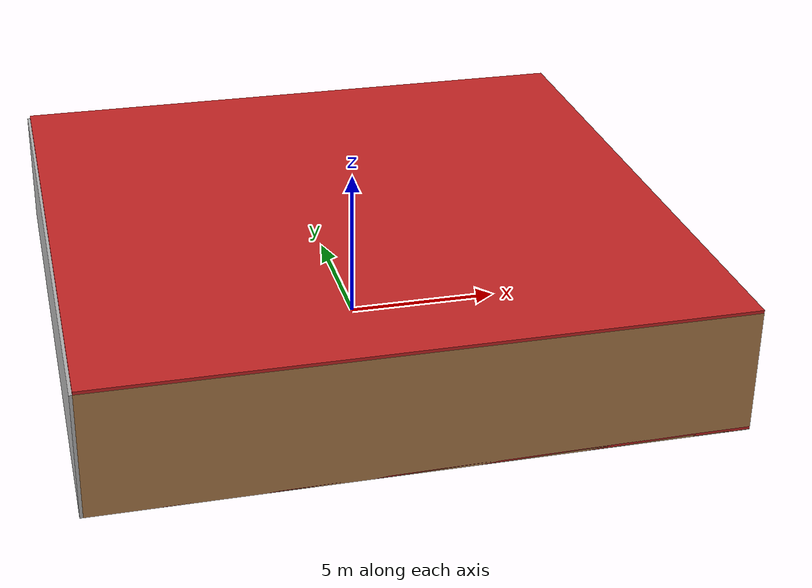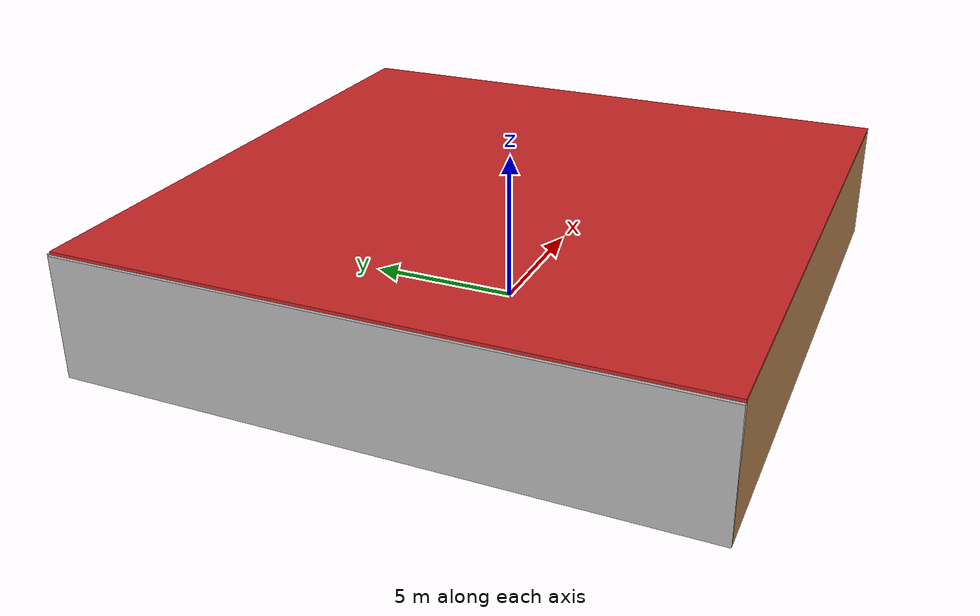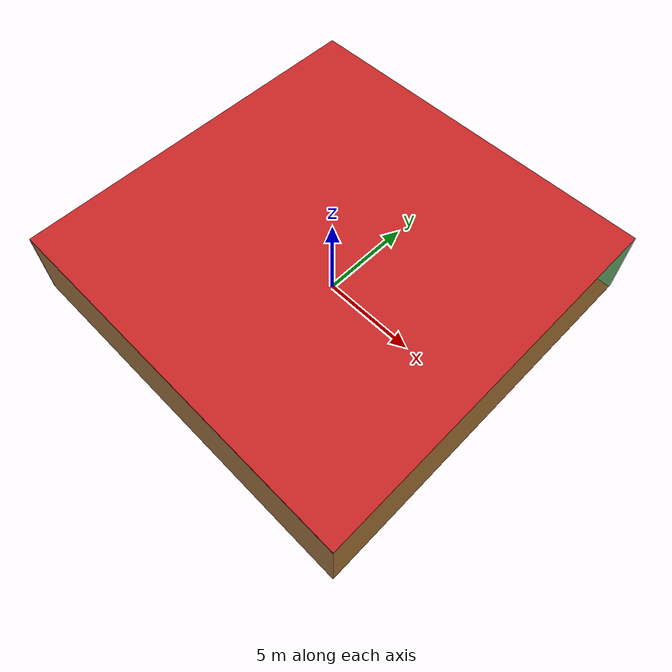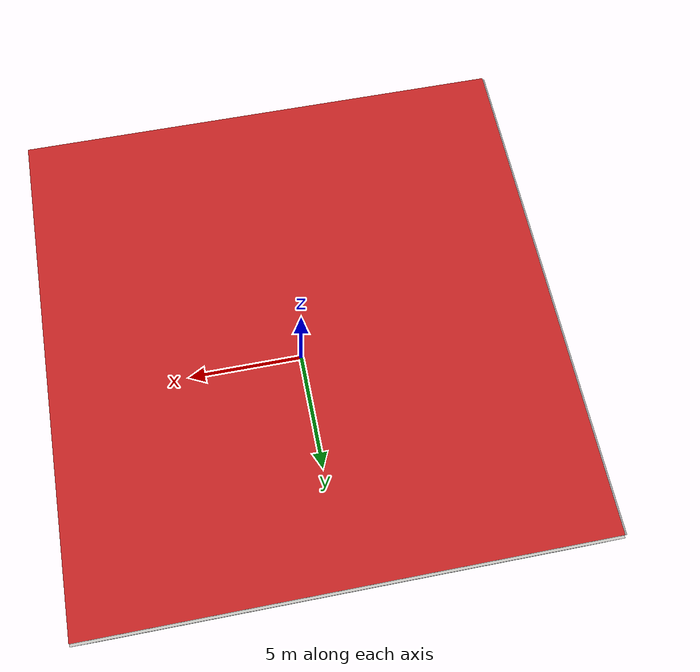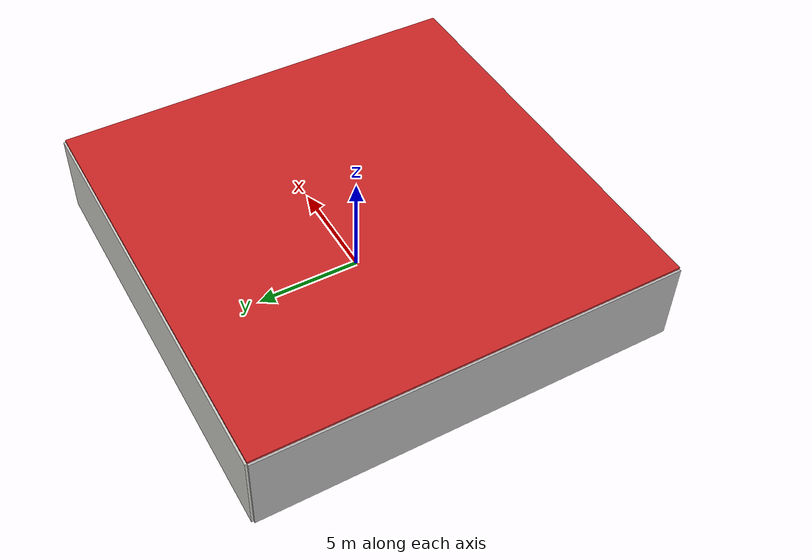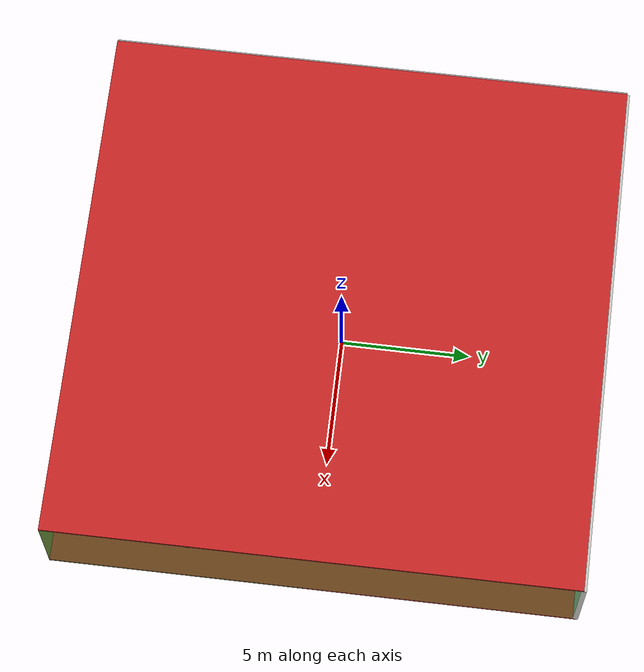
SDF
<sdf version="1.4">
 <world name="default">
  <physics type="ode">
   <max_step_size>0.001</max_step_size>
   <real_time_factor>1</real_time_factor>
   <real_time_update_rate>1000</real_time_update_rate>
   <gravity>0 0 -9.8</gravity>
  </physics>
  <scene><ambient>0.4 0.4 0.4 1</ambient><background>0.7 0.7 0.7 1</background><shadows>1</shadows></scene>
  <model name="Surrounding">
   <static>1</static>
   <link name="Ceiling">
    <collision name="Ceiling_Collision"><geometry><box><size>20 20 0.1</size></box></geometry></collision>
    <visual name="Ceiling_Visual">
     <geometry><box><size>20 20 0.1</size></box></geometry>
     <material>
      <script><uri>file://media/materials/scripts/gazebo.material</uri><name>Gazebo/RedBright</name></script>
     </material>
    </visual>
    <pose>0 0 4.05 0 0 0</pose>
   </link>
   <link name="Wall_South">
    <collision name="Wall_South_Collision">
     <geometry><box><size>20 0 4</size></box></geometry>
     <pose>0 0 2 0 -0 0</pose>
    </collision>
    <visual name="Wall_South_Visual">
     <pose>0 0 2 0 -0 0</pose>
     <geometry><box><size>20 0 4</size></box></geometry>
     <material>
      <script><uri>file://media/materials/scripts/gazebo.material</uri><name>Gazebo/Wood</name></script>
     </material>
    </visual>
    <velocity_decay><linear>0</linear><angular>0</angular></velocity_decay>
    <pose>0 -10 0 0 -0 0</pose>
   </link>
   <link name="Wall_East">
    <collision name="Wall_21_Collision">
     <geometry><box><size>20 0 4</size></box></geometry>
     <pose>0 0 2 0 -0 0</pose>
    </collision>
    <visual name="Wall_21_Visual">
     <pose>0 0 2 0 -0 0</pose>
     <geometry><box><size>20 0 4</size></box></geometry>
     <material>
      <script><uri>file://media/materials/scripts/gazebo.material</uri><name>Gazebo/GreenTransparent</name></script>
     </material>
    </visual>
    <velocity_decay><linear>0</linear><angular>0</angular></velocity_decay>
    <pose>10 0 0 0 -0 1.5708</pose>
   </link>
   <link name="Wall_North">
    <collision name="Wall_22_Collision">
     <geometry><box><size>20 0.2 4</size></box></geometry>
     <pose>0 0 2 0 -0 0</pose>
    </collision>
    <visual name="Wall_22_Visual">
     <pose>0 0 2 0 -0 0</pose>
     <geometry><box><size>20 0.2 4</size></box></geometry>
     <material>
      <script><uri>file://media/materials/scripts/gazebo.material</uri><name>Gazebo/CeilingTiled</name></script>
     </material>
    </visual>
    <velocity_decay><linear>0</linear><angular>0</angular></velocity_decay>
    <pose>0 10 0 0 -0 0</pose>
   </link>
   <link name="Wall_West">
    <collision name="Wall_23_Collision">
     <geometry><box><size>20 0.2 4</size></box></geometry>
     <pose>0 0 2 0 -0 0</pose>
    </collision>
    <visual name="Wall_23_Visual">
     <pose>0 0 2 0 -0 0</pose>
     <geometry><box><size>20 0.2 4</size></box></geometry>
     <material>
      <script><uri>file://media/materials/scripts/gazebo.material</uri><name>Gazebo/Pioneer2Body</name></script>
     </material>
    </visual>
    <velocity_decay><linear>0</linear><angular>0</angular></velocity_decay>
    <pose>-10 0 0 0 0 -1.5708</pose>
   </link>
   <link name="Ground_link">
    <collision name="collision">
     <pose>0 0 .05 0 -0 0</pose>
     <geometry><box><size>20 20 0.1</size></box></geometry>
    </collision>
    <visual name="visual">
     <pose>0 0 .05 0 -0 0</pose>
     <geometry><box><size>20 20 0.1</size></box></geometry>
     <material>
      <script><uri>file://media/materials/scripts/gazebo.material</uri><name>Gazebo/RedGlow</name></script>
     </material>
    </visual>
   </link>
   <static>1</static>
  </model>
  <spherical_coordinates>
   <surface_model>EARTH_WGS84</surface_model>
   <latitude_deg>0</latitude_deg>
   <longitude_deg>0</longitude_deg>
   <elevation>0</elevation>
   <heading_deg>0</heading_deg>
  </spherical_coordinates>
  <light name="lightball_0" type="diffuse">
   <diffuse>0.8 0.8 0.8 1</diffuse>
   <specular>0.2 0.2 0.2 1</specular>
   <attenuation>
    <range>100</range>
    <constant>0.7</constant>
    <linear>0.01</linear>
    <quadratic>0.001</quadratic>
   </attenuation>
   <direction>-0.5 0.1 -0.9</direction>
   <pose>-1.1304714205 -1.01161352992 1.12788993167 0 0 0</pose>
  </light>
  <light name="lightball_1" type="diffuse">
   <diffuse>0.8 0.8 0.8 1</diffuse>
   <specular>0.2 0.2 0.2 1</specular>
   <attenuation>
    <range>100</range>
    <constant>0.7</constant>
    <linear>0.01</linear>
    <quadratic>0.001</quadratic>
   </attenuation>
   <direction>-0.5 0.1 -0.9</direction>
   <pose>6.94933876701 0.25383171863 3.73556295862 0 0 0</pose>
  </light>
  <light name="lightball_2" type="diffuse">
   <diffuse>0.8 0.8 0.8 1</diffuse>
   <specular>0.2 0.2 0.2 1</specular>
   <attenuation>
    <range>100</range>
    <constant>0.7</constant>
    <linear>0.01</linear>
    <quadratic>0.001</quadratic>
   </attenuation>
   <direction>-0.5 0.1 -0.9</direction>
   <pose>0.168291756026 6.85030288408 2.28692907768 0 0 0</pose>
  </light>
  <light name="lightball_3" type="diffuse">
   <diffuse>0.8 0.8 0.8 1</diffuse>
   <specular>0.2 0.2 0.2 1</specular>
   <attenuation>
    <range>100</range>
    <constant>0.7</constant>
    <linear>0.01</linear>
    <quadratic>0.001</quadratic>
   </attenuation>
   <direction>-0.5 0.1 -0.9</direction>
   <pose>7.75631628613 -6.14043242061 0.649848622071 0 0 0</pose>
  </light>
  <light name="lightball_4" type="diffuse">
   <diffuse>0.8 0.8 0.8 1</diffuse>
   <specular>0.2 0.2 0.2 1</specular>
   <attenuation>
    <range>100</range>
    <constant>0.7</constant>
    <linear>0.01</linear>
    <quadratic>0.001</quadratic>
   </attenuation>
   <direction>-0.5 0.1 -0.9</direction>
   <pose>2.25917620272 -9.6316085399 3.02426254475 0 0 0</pose>
  </light>
  <light name="lightball_5" type="diffuse">
   <diffuse>0.8 0.8 0.8 1</diffuse>
   <specular>0.2 0.2 0.2 1</specular>
   <attenuation>
    <range>100</range>
    <constant>0.7</constant>
    <linear>0.01</linear>
    <quadratic>0.001</quadratic>
   </attenuation>
   <direction>-0.5 0.1 -0.9</direction>
   <pose>2.36396506081 8.4291238257 1.19266497349 0 0 0</pose>
  </light>
  <light name="lightball_6" type="diffuse">
   <diffuse>0.8 0.8 0.8 1</diffuse>
   <specular>0.2 0.2 0.2 1</specular>
   <attenuation>
    <range>100</range>
    <constant>0.7</constant>
    <linear>0.01</linear>
    <quadratic>0.001</quadratic>
   </attenuation>
   <direction>-0.5 0.1 -0.9</direction>
   <pose>6.04119473041 8.68792486175 3.57835972256 0 0 0</pose>
  </light>
  <light name="lightball_7" type="diffuse">
   <diffuse>0.8 0.8 0.8 1</diffuse>
   <specular>0.2 0.2 0.2 1</specular>
   <attenuation>
    <range>100</range>
    <constant>0.7</constant>
    <linear>0.01</linear>
    <quadratic>0.001</quadratic>
   </attenuation>
   <direction>-0.5 0.1 -0.9</direction>
   <pose>-0.665073618703 -2.30488459774 3.68187071477 0 0 0</pose>
  </light>
  <include><uri>model://table</uri><pose>0.36521344881 -8.39168157524 0 0 0 2.13162243181</pose></include>
  <include><uri>model://cabinet</uri><pose>8.66633045303 -5.02701928741 0 0 0 1.33547221699</pose></include>
  <include><uri>model://cabinet</uri><pose>8.16041691618 7.11954755467 0 0 0 0.80120684278</pose></include>
 </world>
</sdf>

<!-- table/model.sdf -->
<sdf version="1.5">
  <model name="table">
    <static>true</static>
    <link name="link">
      <collision name="surface">
        <pose>0 0 1.0 0 0 0</pose>
        <geometry>
          <box>
            <size>1.5 0.8 0.03</size>
          </box>
        </geometry>
        <surface>
          <friction>
            <ode>
              <mu>0.6</mu>
              <mu2>0.6</mu2>
            </ode>
          </friction>
        </surface>
      </collision>
      <visual name="visual1">
        <pose>0 0 1.0 0 0 0</pose>
        <geometry>
          <box>
            <size>1.5 0.8 0.03</size>
          </box>
        </geometry>
        <material>
          <script>
            <uri>model://media/materials/scripts/gazebo.material</uri>
            <name>Gazebo/Wood</name>
          </script>
        </material>
      </visual>
      <collision name="front_left_leg">
        <pose>0.68 0.38 0.5 0 0 0</pose>
        <geometry>
          <cylinder>
            <radius>0.02</radius>
            <length>1.0</length>
          </cylinder>
        </geometry>
      </collision>
      <visual name="front_left_leg">
        <pose>0.68 0.38 0.5 0 0 0</pose>
        <geometry>
          <cylinder>
            <radius>0.02</radius>
            <length>1.0</length>
          </cylinder>
        </geometry>
        <material>
          <script>
            <uri>model://media/materials/scripts/gazebo.material</uri>
            <name>Gazebo/Grey</name>
          </script>
        </material>
      </visual>
      <collision name="front_right_leg">
        <pose>0.68 -0.38 0.5 0 0 0</pose>
        <geometry>
          <cylinder>
            <radius>0.02</radius>
            <length>1.0</length>
          </cylinder>
        </geometry>
      </collision>
      <visual name="front_right_leg">
        <pose>0.68 -0.38 0.5 0 0 0</pose>
        <geometry>
          <cylinder>
            <radius>0.02</radius>
            <length>1.0</length>
          </cylinder>
        </geometry>
        <material>
          <script>
            <uri>model://media/materials/scripts/gazebo.material</uri>
            <name>Gazebo/Grey</name>
          </script>
        </material>
      </visual>
      <collision name="back_right_leg">
        <pose>-0.68 -0.38 0.5 0 0 0</pose>
        <geometry>
          <cylinder>
            <radius>0.02</radius>
            <length>1.0</length>
          </cylinder>
        </geometry>
      </collision>
      <visual name="back_right_leg">
        <pose>-0.68 -0.38 0.5 0 0 0</pose>
        <geometry>
          <cylinder>
            <radius>0.02</radius>
            <length>1.0</length>
          </cylinder>
        </geometry>
        <material>
          <script>
            <uri>model://media/materials/scripts/gazebo.material</uri>
            <name>Gazebo/Grey</name>
          </script>
        </material>
      </visual>
      <collision name="back_left_leg">
        <pose>-0.68 0.38 0.5 0 0 0</pose>
        <geometry>
          <cylinder>
            <radius>0.02</radius>
            <length>1.0</length>
          </cylinder>
        </geometry>
      </collision>
      <visual name="back_left_leg">
        <pose>-0.68 0.38 0.5 0 0 0</pose>
        <geometry>
          <cylinder>
            <radius>0.02</radius>
            <length>1.0</length>
          </cylinder>
        </geometry>
        <material>
          <script>
            <uri>model://media/materials/scripts/gazebo.material</uri>
            <name>Gazebo/Grey</name>
          </script>
        </material>
      </visual>
    </link>
  </model>
</sdf>

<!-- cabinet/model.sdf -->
<sdf version="1.5">
  <model name="cabinet">
    <static>true</static>
    <link name="cabinet_bottom_plate">
      <inertial>
        <pose>0 0 -1 0 0 0</pose>
        <inertia>
          <ixx>2.050000</ixx>
          <ixy>0</ixy>
          <ixz>0</ixz>
          <iyy>2.050000</iyy>
          <iyz>0</iyz>
          <izz>2.050000</izz>
        </inertia>
        <mass>25.000000</mass>
      </inertial>
      <collision name="cabinet_bottom_plate_geom">
        <pose>0 0 0.010000 0 0 0</pose>
        <geometry>
          <box>
            <size>0.450000 0.450000 0.020000</size>
          </box>
        </geometry>
      </collision>
      <visual name="cabinet_bottom_plate_geom_visual">
        <pose>0 0 0.010000 0 0 0</pose>
        <geometry>
          <box>
            <size>0.450000 0.450000 0.020000</size>
          </box>
        </geometry>
        <material>
          <script>
            <uri>model://media/materials/scripts/gazebo.material</uri>
            <name>Gazebo/Wood</name>
          </script>
        </material>
      </visual>
      <collision name="cabinet_bottom_plate_geom_cabinet_back_plate">
        <pose>0.235000 0 0.510000 0 0 0</pose>
        <geometry>
          <box>
            <size>0.020000 0.450000 1.020000</size>
          </box>
        </geometry>
      </collision>
      <visual name="cabinet_bottom_plate_geom_cabinet_back_plate_visual">
        <pose>0.235000 0 0.510000 0 0 0</pose>
        <geometry>
          <box>
            <size>0.020000 0.450000 1.020000</size>
          </box>
        </geometry>
        <material>
          <script>
            <uri>model://media/materials/scripts/gazebo.material</uri>
            <name>Gazebo/Wood</name>
          </script>
        </material>
      </visual>
      <collision name="cabinet_bottom_plate_geom_cabinet_left_plate">
        <pose>0 0.235000 0.510000 0 0 0</pose>
        <geometry>
          <box>
            <size>0.450000 0.020000 1.020000</size>
          </box>
        </geometry>
      </collision>
      <visual name="cabinet_bottom_plate_geom_cabinet_left_plate_visual">
        <pose>0 0.235000 0.510000 0 0 0</pose>
        <geometry>
          <box>
            <size>0.450000 0.020000 1.020000</size>
          </box>
        </geometry>
        <material>
          <script>
            <uri>model://media/materials/scripts/gazebo.material</uri>
            <name>Gazebo/Wood</name>
          </script>
        </material>
      </visual>
      <collision name="cabinet_bottom_plate_geom_cabinet_middle_plate">
        <pose>0 0 0.510000 0 0 0</pose>
        <geometry>
          <box>
            <size>0.450000 0.450000 0.020000</size>
          </box>
        </geometry>
      </collision>
      <visual name="cabinet_bottom_plate_geom_cabinet_middle_plate_visual">
        <pose>0 0 0.510000 0 0 0</pose>
        <geometry>
          <box>
            <size>0.450000 0.450000 0.020000</size>
          </box>
        </geometry>
        <material>
          <script>
            <uri>model://media/materials/scripts/gazebo.material</uri>
            <name>Gazebo/Wood</name>
          </script>
        </material>
      </visual>
      <collision name="cabinet_bottom_plate_geom_cabinet_right_plate">
        <pose>0 -0.235000 0.510000 0 0 0</pose>
        <geometry>
          <box>
            <size>0.450000 0.020000 1.020000</size>
          </box>
        </geometry>
      </collision>
      <visual name="cabinet_bottom_plate_geom_cabinet_right_plate_visual">
        <pose>0 -0.235000 0.510000 0 0 0</pose>
        <geometry>
          <box>
            <size>0.450000 0.020000 1.020000</size>
          </box>
        </geometry>
        <material>
          <script>
            <uri>model://media/materials/scripts/gazebo.material</uri>
            <name>Gazebo/Wood</name>
          </script>
        </material>
      </visual>
      <collision name="cabinet_bottom_plate_geom_cabinet_top_plate">
        <pose>0 0 1.010000 0 0 0</pose>
        <geometry>
          <box>
            <size>0.450000 0.450000 0.020000</size>
          </box>
        </geometry>
      </collision>
      <visual name="cabinet_bottom_plate_geom_cabinet_top_plate_visual">
        <pose>0 0 1.010000 0 0 0</pose>
        <geometry>
          <box>
            <size>0.450000 0.450000 0.020000</size>
          </box>
        </geometry>
        <material>
          <script>
            <uri>model://media/materials/scripts/gazebo.material</uri>
            <name>Gazebo/Wood</name>
          </script>
        </material>
      </visual>
    </link>
  </model>
</sdf>
